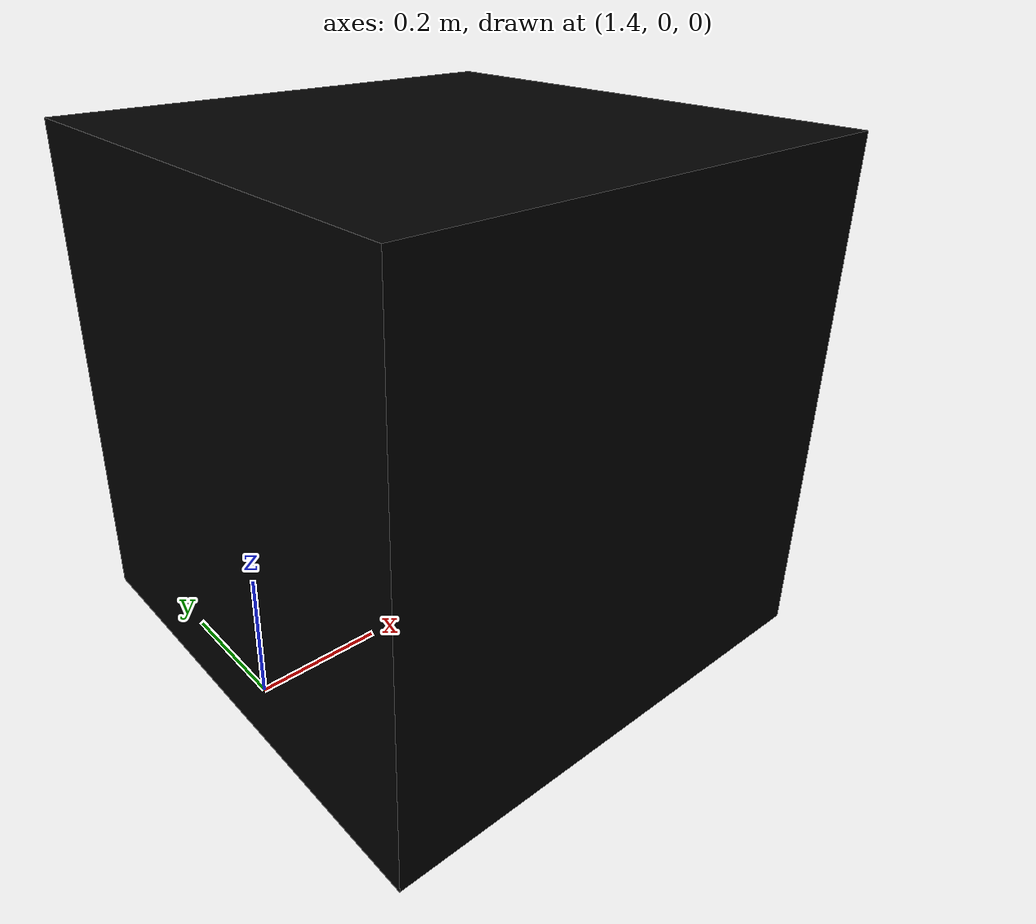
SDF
<?xml version='1.0'?>
<sdf version='1.4'>
  <model name="AruCo_Block">
    <static>true</static>
    <link name='chassis'>
            <pose>1.75 0 0.4 0 0 0</pose>

            <collision name='collision'>
              <geometry>
                <box>
                  <size>.8 .8 .8</size>
                </box>
              </geometry>
            </collision>

            <visual name='visual'>
              <geometry>
                <box>
                  <size>.8 .8 .8</size>
                </box>
              </geometry>
              <material>
                <script>
                <uri>model://AruCo_Block/materials/scripts</uri>
                <uri>model://AruCo_Block/materials/textures</uri>
                <name>marker/Diffuse</name>
                </script>
                <ambient>0 0 0 1</ambient>
                <diffuse>0 0 0 1</diffuse>
                <specular>0 0 0 0</specular>
                <emissive>0 1 0 1</emissive>
              </material>
            </visual>
          </link>
  </model>
</sdf>
